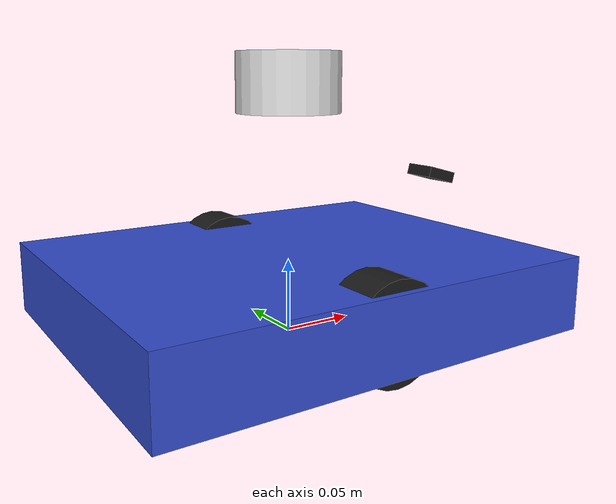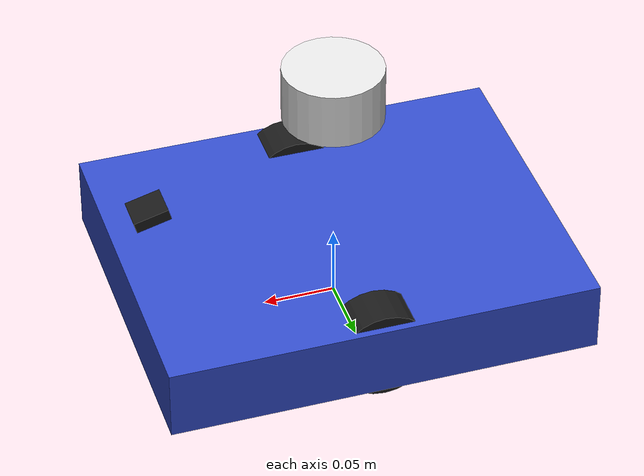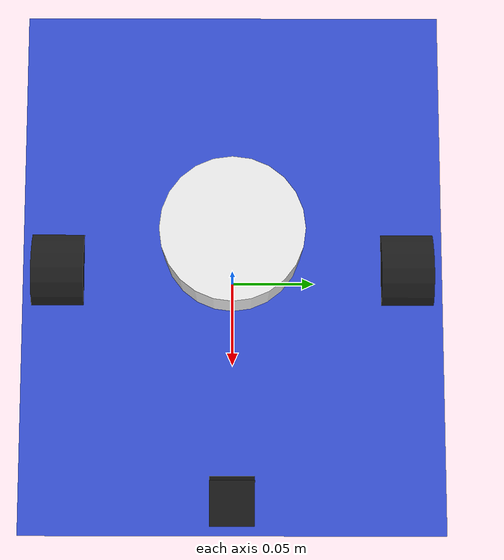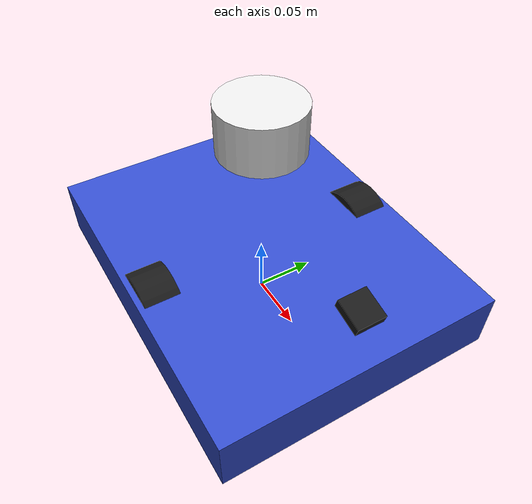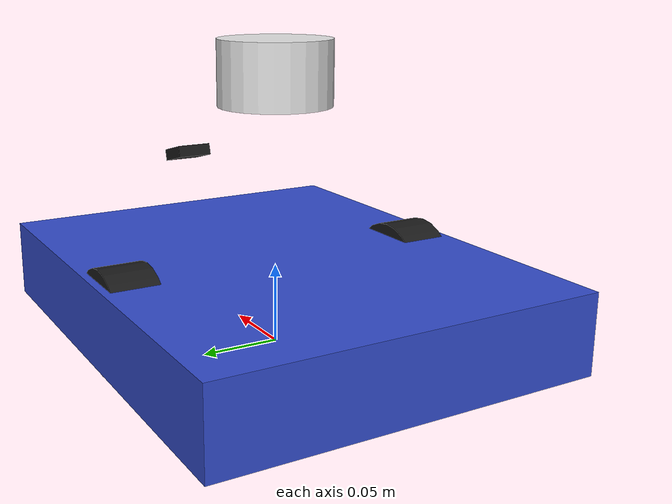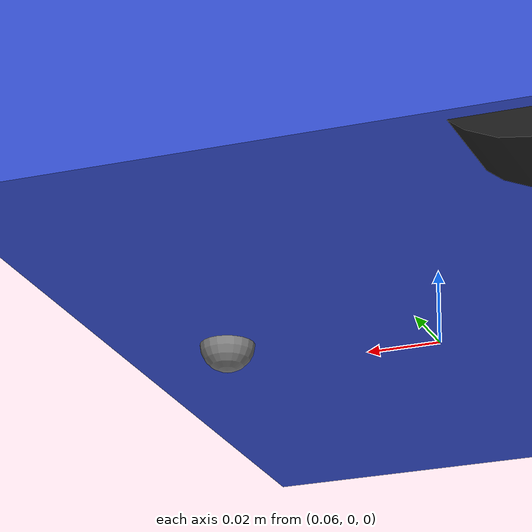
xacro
<?xml version="1.0"?>
<robot xmlns:xacro="http://www.ros.org/wiki/xacro" name="advika">

  <!-- ==================== PROPERTIES ==================== -->
  <xacro:property name="chassis_l" value="0.300"/>
  <xacro:property name="chassis_w" value="0.240"/>
  <xacro:property name="chassis_h" value="0.050"/>
  <xacro:property name="wheel_d" value="0.065"/>
  <xacro:property name="wheel_w" value="0.030"/>
  <xacro:property name="wheelbase" value="0.200"/>
  <xacro:property name="wheel_z" value="0.0325"/>
  <xacro:property name="caster_d" value="0.015"/>
  <xacro:property name="caster_x" value="0.120"/>
  <xacro:property name="lidar_z" value="0.150"/>
  <xacro:property name="lidar_d" value="0.070"/>
  <xacro:property name="lidar_h" value="0.040"/>
  <xacro:property name="pi_z" value="0.025"/>
  <xacro:property name="pi_l" value="0.085"/>
  <xacro:property name="pi_w" value="0.056"/>
  <xacro:property name="camera_z" value="0.100"/>
  <xacro:property name="camera_tilt_up" value="0.2618"/>
  <xacro:property name="floor_cam_z" value="0.025"/>
  <xacro:property name="floor_cam_tilt" value="0.7854"/>

  <!-- ==================== MATERIALS ==================== -->
  <material name="black"><color rgba="0.1 0.1 0.1 1"/></material>
  <material name="grey"><color rgba="0.5 0.5 0.5 1"/></material>
  <material name="white"><color rgba="0.9 0.9 0.9 1"/></material>
  <material name="blue"><color rgba="0.2 0.3 0.8 1"/></material>
  <material name="red"><color rgba="0.8 0.2 0.2 1"/></material>
  <material name="clear"><color rgba="0.8 0.9 1.0 0.3"/></material>

  <!-- ==================== BASE LINK ==================== -->
  <link name="base_footprint">
    <visual><geometry><sphere radius="0.001"/></geometry></visual>
  </link>

  <link name="base_link">
    <visual>
      <geometry><box size="${chassis_l} ${chassis_w} ${chassis_h}"/></geometry>
      <material name="blue"/>
    </visual>
    <collision>
      <geometry><box size="${chassis_l} ${chassis_w} ${chassis_h}"/></geometry>
    </collision>
    <inertial>
      <mass value="1.5"/>
      <inertia ixx="0.01" ixy="0" ixz="0" iyy="0.01" iyz="0" izz="0.02"/>
    </inertial>
  </link>

  <joint name="base_joint" type="fixed">
    <parent link="base_footprint"/>
    <child link="base_link"/>
    <origin xyz="0 0 ${wheel_z}" rpy="0 0 0"/>
  </joint>

  <!-- ==================== LEFT WHEEL ==================== -->
  <link name="left_wheel">
    <visual>
      <geometry><cylinder radius="${wheel_d/2}" length="${wheel_w}"/></geometry>
      <material name="black"/>
    </visual>
    <collision>
      <geometry><cylinder radius="${wheel_d/2}" length="${wheel_w}"/></geometry>
      <surface>
        <friction><ode><mu>0.8</mu><mu2>0.8</mu2></ode></friction>
      </surface>
    </collision>
    <inertial>
      <mass value="0.2"/>
      <inertia ixx="0.0001" ixy="0" ixz="0" iyy="0.0001" iyz="0" izz="0.0002"/>
    </inertial>
  </link>

  <joint name="left_wheel_joint" type="continuous">
    <parent link="base_link"/>
    <child link="left_wheel"/>
    <origin xyz="0 ${wheelbase/2} 0" rpy="${-pi/2} 0 0"/>
    <axis xyz="0 0 1"/>
  </joint>

  <!-- ==================== RIGHT WHEEL ==================== -->
  <link name="right_wheel">
    <visual>
      <geometry><cylinder radius="${wheel_d/2}" length="${wheel_w}"/></geometry>
      <material name="black"/>
    </visual>
    <collision>
      <geometry><cylinder radius="${wheel_d/2}" length="${wheel_w}"/></geometry>
      <surface>
        <friction><ode><mu>0.8</mu><mu2>0.8</mu2></ode></friction>
      </surface>
    </collision>
    <inertial>
      <mass value="0.2"/>
      <inertia ixx="0.0001" ixy="0" ixz="0" iyy="0.0001" iyz="0" izz="0.0002"/>
    </inertial>
  </link>

  <joint name="right_wheel_joint" type="continuous">
    <parent link="base_link"/>
    <child link="right_wheel"/>
    <origin xyz="0 ${-wheelbase/2} 0" rpy="${-pi/2} 0 0"/>
    <axis xyz="0 0 1"/>
  </joint>

  <!-- ==================== FRONT CASTER ==================== -->
  <link name="front_caster">
    <visual><geometry><sphere radius="${caster_d/2}"/></geometry><material name="grey"/></visual>
    <collision><geometry><sphere radius="${caster_d/2}"/></geometry></collision>
    <inertial><mass value="0.05"/><inertia ixx="0.00001" ixy="0" ixz="0" iyy="0.00001" iyz="0" izz="0.00001"/></inertial>
  </link>
  <joint name="front_caster_joint" type="fixed">
    <parent link="base_link"/>
    <child link="front_caster"/>
    <origin xyz="${caster_x} 0 ${-wheel_z + caster_d/2}" rpy="0 0 0"/>
  </joint>

  <!-- ==================== REAR CASTER ==================== -->
  <link name="rear_caster">
    <visual><geometry><sphere radius="${caster_d/2}"/></geometry><material name="grey"/></visual>
    <collision><geometry><sphere radius="${caster_d/2}"/></geometry></collision>
    <inertial><mass value="0.05"/><inertia ixx="0.00001" ixy="0" ixz="0" iyy="0.00001" iyz="0" izz="0.00001"/></inertial>
  </link>
  <joint name="rear_caster_joint" type="fixed">
    <parent link="base_link"/>
    <child link="rear_caster"/>
    <origin xyz="${-caster_x} 0 ${-wheel_z + caster_d/2}" rpy="0 0 0"/>
  </joint>

  <!-- ==================== LIDAR ==================== -->
  <link name="lidar_sensor">
    <visual>
      <geometry><cylinder radius="${lidar_d/2}" length="${lidar_h}"/></geometry>
      <material name="white"/>
    </visual>
    <collision>
      <geometry><cylinder radius="${lidar_d/2}" length="${lidar_h}"/></geometry>
    </collision>
    <inertial><mass value="0.1"/><inertia ixx="0.0001" ixy="0" ixz="0" iyy="0.0001" iyz="0" izz="0.0001"/></inertial>
  </link>
  <joint name="lidar_joint" type="fixed">
    <parent link="base_link"/>
    <child link="lidar_sensor"/>
    <origin xyz="0 0 ${lidar_z - wheel_z + lidar_h/2}" rpy="0 0 0"/>
  </joint>

  <!-- ==================== HORIZON CAMERA ==================== -->
  <link name="horizon_camera_link">
    <visual><geometry><box size="0.025 0.024 0.008"/></geometry><material name="black"/></visual>
    <collision><geometry><box size="0.025 0.024 0.008"/></geometry></collision>
    <inertial><mass value="0.01"/><inertia ixx="0.000001" ixy="0" ixz="0" iyy="0.000001" iyz="0" izz="0.000001"/></inertial>
  </link>
  <joint name="horizon_camera_joint" type="fixed">
    <parent link="base_link"/>
    <child link="horizon_camera_link"/>
    <origin xyz="0.13 0 ${camera_z - wheel_z}" rpy="0 ${camera_tilt_up} 0"/>
  </joint>

  <!-- ==================== FLOOR CAMERA ==================== -->
  <link name="floor_camera_link">
    <visual><geometry><box size="0.025 0.024 0.008"/></geometry><material name="black"/></visual>
    <collision><geometry><box size="0.025 0.024 0.008"/></geometry></collision>
    <inertial><mass value="0.01"/><inertia ixx="0.000001" ixy="0" ixz="0" iyy="0.000001" iyz="0" izz="0.000001"/></inertial>
  </link>
  <joint name="floor_camera_joint" type="fixed">
    <parent link="base_link"/>
    <child link="floor_camera_link"/>
    <origin xyz="0.13 0 ${floor_cam_z - wheel_z}" rpy="0 ${floor_cam_tilt} 0"/>
  </joint>

  <!-- ==================== IMU ==================== -->
  <link name="imu_link">
    <visual><geometry><box size="0.020 0.015 0.003"/></geometry><material name="red"/></visual>
    <collision><geometry><box size="0.020 0.015 0.003"/></geometry></collision>
    <inertial><mass value="0.005"/><inertia ixx="0.0000001" ixy="0" ixz="0" iyy="0.0000001" iyz="0" izz="0.0000001"/></inertial>
  </link>
  <joint name="imu_joint" type="fixed">
    <parent link="base_link"/>
    <child link="imu_link"/>
    <origin xyz="0 0 ${-wheel_z + 0.003}" rpy="0 0 0"/>
  </joint>

  <!-- ==================== GAZEBO HARMONIC PLUGINS ==================== -->
  <!-- Differential drive controller -->
  <gazebo>
    <plugin filename="gz-sim-diff-drive-system" name="gz::sim::systems::DiffDrive">
      <left_joint>left_wheel_joint</left_joint>
      <right_joint>right_wheel_joint</right_joint>
      <wheel_separation>${wheelbase}</wheel_separation>
      <wheel_radius>${wheel_d/2}</wheel_radius>
      <max_linear_acceleration>1.0</max_linear_acceleration>
      <min_linear_acceleration>-1.0</min_linear_acceleration>
      <max_angular_acceleration>2.0</max_angular_acceleration>
      <min_angular_acceleration>-2.0</min_angular_acceleration>
      <max_linear_velocity>0.5</max_linear_velocity>
      <max_angular_velocity>1.0</max_angular_velocity>
      <topic>/advika/cmd_vel</topic>
      <odom_topic>/advika/odom</odom_topic>
      <frame_id>odom</frame_id>
      <child_frame_id>base_footprint</child_frame_id>
      <odom_publish_frequency>50</odom_publish_frequency>
    </plugin>
  </gazebo>

  <!-- Joint state publisher (needed for TF) -->
  <gazebo>
    <plugin filename="gz-sim-joint-state-publisher-system" name="gz::sim::systems::JointStatePublisher">
      <joint_name>left_wheel_joint</joint_name>
      <joint_name>right_wheel_joint</joint_name>
      <topic>/advika/joint_states</topic>
    </plugin>
  </gazebo>

  <!-- ==================== LIDAR PLUGIN ==================== -->
  <gazebo reference="lidar_sensor">
    <sensor name="lidar" type="gpu_lidar">
      <always_on>true</always_on>
      <update_rate>10</update_rate>
      <topic>/advika/scan</topic>
      <gz_frame_id>lidar_sensor</gz_frame_id>
      <lidar>
        <scan><horizontal>
          <samples>360</samples><resolution>1</resolution>
          <min_angle>${-pi}</min_angle><max_angle>${pi}</max_angle>
        </horizontal></scan>
        <range><min>0.12</min><max>5.0</max><resolution>0.01</resolution></range>
      </lidar>
    </sensor>
  </gazebo>

  <!-- ==================== HORIZON CAMERA PLUGIN ==================== -->
  <gazebo reference="horizon_camera_link">
    <sensor name="horizon_camera" type="camera">
      <always_on>true</always_on>
      <update_rate>15</update_rate>
      <topic>/advika/horizon_camera/image_raw</topic>
      <gz_frame_id>horizon_camera_link</gz_frame_id>
      <camera>
        <horizontal_fov>1.22</horizontal_fov>
        <image><width>320</width><height>240</height><format>R8G8B8</format></image>
        <clip><near>0.1</near><far>100</far></clip>
      </camera>
    </sensor>
  </gazebo>

  <!-- ==================== FLOOR CAMERA PLUGIN ==================== -->
  <gazebo reference="floor_camera_link">
    <sensor name="floor_camera" type="camera">
      <always_on>true</always_on>
      <update_rate>15</update_rate>
      <topic>/advika/floor_camera/image_raw</topic>
      <gz_frame_id>floor_camera_link</gz_frame_id>
      <camera>
        <horizontal_fov>2.09</horizontal_fov>
        <image><width>320</width><height>240</height><format>R8G8B8</format></image>
        <clip><near>0.05</near><far>10</far></clip>
      </camera>
    </sensor>
  </gazebo>

  <!-- ==================== IMU PLUGIN ==================== -->
  <gazebo reference="imu_link">
    <sensor name="imu" type="imu">
      <always_on>true</always_on>
      <update_rate>100</update_rate>
      <topic>/advika/imu/data</topic>
      <gz_frame_id>imu_link</gz_frame_id>
    </sensor>
  </gazebo>

</robot>
